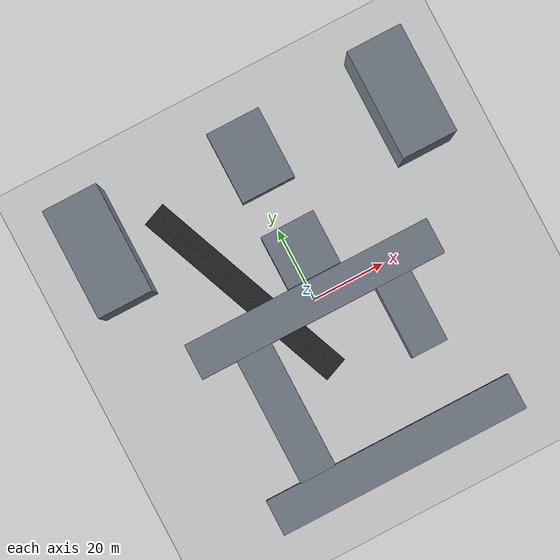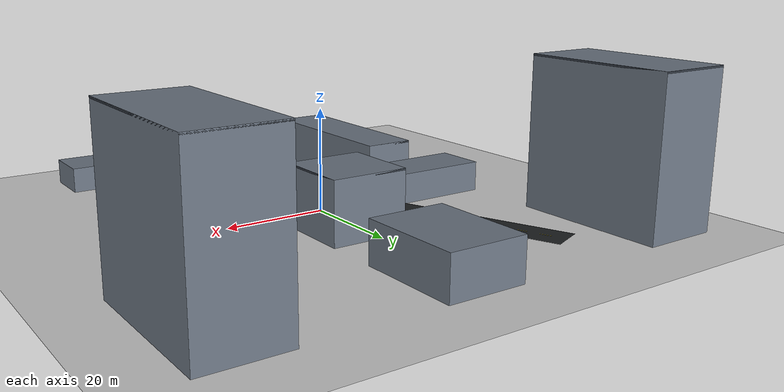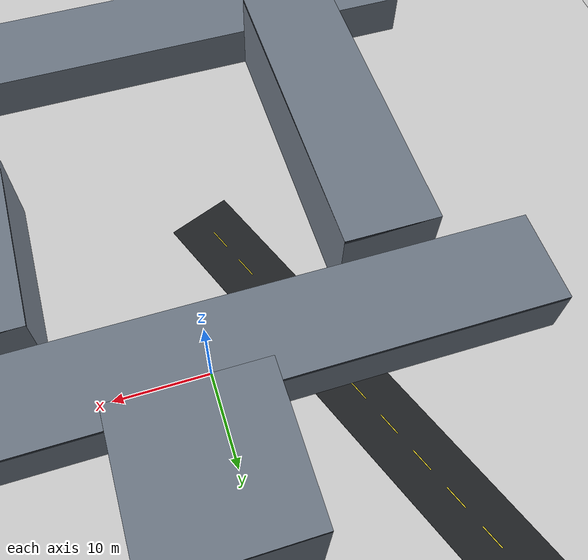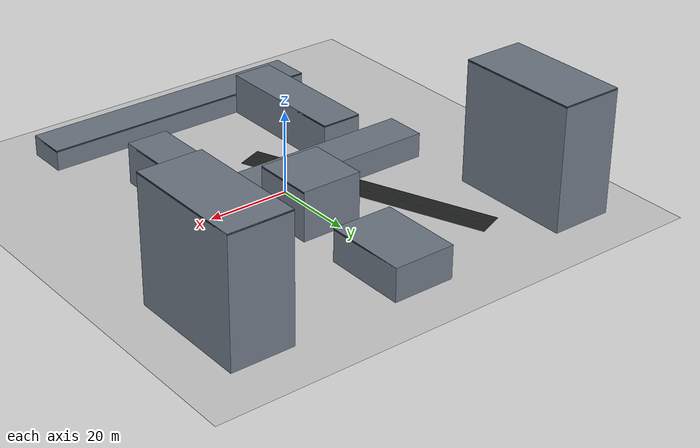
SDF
<?xml version="1.0"?>
<sdf version="1.6"><world name="logistics_2_complex_crossing">
  <physics name="default_physics" type="ode"><max_step_size>0.004</max_step_size><real_time_factor>1</real_time_factor><real_time_update_rate>250</real_time_update_rate><magnetic_field>6.0e-6 2.3e-5 -4.2e-5</magnetic_field></physics>
  <gravity>0 0 -9.8066</gravity>
  <include><uri>model://sun</uri></include>
  <include><uri>model://ground_plane</uri></include>
  <spherical_coordinates><surface_model>EARTH_WGS84</surface_model><latitude_deg>47.397742</latitude_deg><longitude_deg>8.545594</longitude_deg><elevation>488</elevation><heading_deg>0</heading_deg></spherical_coordinates>
<model name="service_road"><static>true</static><pose>-15.000 10.000 0.012 0.000 0.000 -1.190</pose><link name="link"><visual name="visual"><cast_shadows>false</cast_shadows><geometry><box><size>61.852 7.0 0.02</size></box></geometry><material><ambient>0.12 0.13 0.14 1</ambient><diffuse>0.12 0.13 0.14 1</diffuse></material></visual></link></model>
<model name="road_mark_00"><static>true</static><pose>-25.000 35.000 0.026 0.000 0.000 -1.190</pose><link name="link"><visual name="visual"><cast_shadows>false</cast_shadows><geometry><box><size>2.4 0.12 0.012</size></box></geometry><material><ambient>0.92 0.84 0.18 1</ambient><diffuse>0.92 0.84 0.18 1</diffuse></material></visual></link></model>
<model name="road_mark_01"><static>true</static><pose>-23.333 30.833 0.026 0.000 0.000 -1.190</pose><link name="link"><visual name="visual"><cast_shadows>false</cast_shadows><geometry><box><size>2.4 0.12 0.012</size></box></geometry><material><ambient>0.92 0.84 0.18 1</ambient><diffuse>0.92 0.84 0.18 1</diffuse></material></visual></link></model>
<model name="road_mark_02"><static>true</static><pose>-21.667 26.667 0.026 0.000 0.000 -1.190</pose><link name="link"><visual name="visual"><cast_shadows>false</cast_shadows><geometry><box><size>2.4 0.12 0.012</size></box></geometry><material><ambient>0.92 0.84 0.18 1</ambient><diffuse>0.92 0.84 0.18 1</diffuse></material></visual></link></model>
<model name="road_mark_03"><static>true</static><pose>-20.000 22.500 0.026 0.000 0.000 -1.190</pose><link name="link"><visual name="visual"><cast_shadows>false</cast_shadows><geometry><box><size>2.4 0.12 0.012</size></box></geometry><material><ambient>0.92 0.84 0.18 1</ambient><diffuse>0.92 0.84 0.18 1</diffuse></material></visual></link></model>
<model name="road_mark_04"><static>true</static><pose>-18.333 18.333 0.026 0.000 0.000 -1.190</pose><link name="link"><visual name="visual"><cast_shadows>false</cast_shadows><geometry><box><size>2.4 0.12 0.012</size></box></geometry><material><ambient>0.92 0.84 0.18 1</ambient><diffuse>0.92 0.84 0.18 1</diffuse></material></visual></link></model>
<model name="road_mark_05"><static>true</static><pose>-16.667 14.167 0.026 0.000 0.000 -1.190</pose><link name="link"><visual name="visual"><cast_shadows>false</cast_shadows><geometry><box><size>2.4 0.12 0.012</size></box></geometry><material><ambient>0.92 0.84 0.18 1</ambient><diffuse>0.92 0.84 0.18 1</diffuse></material></visual></link></model>
<model name="road_mark_06"><static>true</static><pose>-15.000 10.000 0.026 0.000 0.000 -1.190</pose><link name="link"><visual name="visual"><cast_shadows>false</cast_shadows><geometry><box><size>2.4 0.12 0.012</size></box></geometry><material><ambient>0.92 0.84 0.18 1</ambient><diffuse>0.92 0.84 0.18 1</diffuse></material></visual></link></model>
<model name="road_mark_07"><static>true</static><pose>-13.333 5.833 0.026 0.000 0.000 -1.190</pose><link name="link"><visual name="visual"><cast_shadows>false</cast_shadows><geometry><box><size>2.4 0.12 0.012</size></box></geometry><material><ambient>0.92 0.84 0.18 1</ambient><diffuse>0.92 0.84 0.18 1</diffuse></material></visual></link></model>
<model name="road_mark_08"><static>true</static><pose>-11.667 1.667 0.026 0.000 0.000 -1.190</pose><link name="link"><visual name="visual"><cast_shadows>false</cast_shadows><geometry><box><size>2.4 0.12 0.012</size></box></geometry><material><ambient>0.92 0.84 0.18 1</ambient><diffuse>0.92 0.84 0.18 1</diffuse></material></visual></link></model>
<model name="road_mark_09"><static>true</static><pose>-10.000 -2.500 0.026 0.000 0.000 -1.190</pose><link name="link"><visual name="visual"><cast_shadows>false</cast_shadows><geometry><box><size>2.4 0.12 0.012</size></box></geometry><material><ambient>0.92 0.84 0.18 1</ambient><diffuse>0.92 0.84 0.18 1</diffuse></material></visual></link></model>
<model name="road_mark_10"><static>true</static><pose>-8.333 -6.667 0.026 0.000 0.000 -1.190</pose><link name="link"><visual name="visual"><cast_shadows>false</cast_shadows><geometry><box><size>2.4 0.12 0.012</size></box></geometry><material><ambient>0.92 0.84 0.18 1</ambient><diffuse>0.92 0.84 0.18 1</diffuse></material></visual></link></model>
<model name="road_mark_11"><static>true</static><pose>-6.667 -10.833 0.026 0.000 0.000 -1.190</pose><link name="link"><visual name="visual"><cast_shadows>false</cast_shadows><geometry><box><size>2.4 0.12 0.012</size></box></geometry><material><ambient>0.92 0.84 0.18 1</ambient><diffuse>0.92 0.84 0.18 1</diffuse></material></visual></link></model>
<model name="road_mark_12"><static>true</static><pose>-5.000 -15.000 0.026 0.000 0.000 -1.190</pose><link name="link"><visual name="visual"><cast_shadows>false</cast_shadows><geometry><box><size>2.4 0.12 0.012</size></box></geometry><material><ambient>0.92 0.84 0.18 1</ambient><diffuse>0.92 0.84 0.18 1</diffuse></material></visual></link></model>
<model name="obstacle_00_tower_1"><static>true</static><pose>-42.500 35.000 15.000 0 0 0</pose><link name="link"><collision name="collision"><geometry><box><size>15.000 30.000 30.000</size></box></geometry></collision><visual name="visual"><geometry><box><size>15.000 30.000 30.000</size></box></geometry><material><ambient>0.43 0.47 0.52 1</ambient><diffuse>0.43 0.47 0.52 1</diffuse></material></visual></link></model>
<model name="obstacle_00_tower_1_roof"><static>true</static><pose>-42.500 35.000 29.820 0.000 0.000 0.000</pose><link name="link"><visual name="visual"><cast_shadows>false</cast_shadows><geometry><box><size>15.000 30.000 0.360</size></box></geometry><material><ambient>0.20 0.23 0.27 1</ambient><diffuse>0.20 0.23 0.27 1</diffuse></material></visual></link></model>
<model name="obstacle_01_tower_2"><static>true</static><pose>42.500 35.000 15.000 0 0 0</pose><link name="link"><collision name="collision"><geometry><box><size>15.000 30.000 30.000</size></box></geometry></collision><visual name="visual"><geometry><box><size>15.000 30.000 30.000</size></box></geometry><material><ambient>0.43 0.47 0.52 1</ambient><diffuse>0.43 0.47 0.52 1</diffuse></material></visual></link></model>
<model name="obstacle_01_tower_2_roof"><static>true</static><pose>42.500 35.000 29.820 0.000 0.000 0.000</pose><link name="link"><visual name="visual"><cast_shadows>false</cast_shadows><geometry><box><size>15.000 30.000 0.360</size></box></geometry><material><ambient>0.20 0.23 0.27 1</ambient><diffuse>0.20 0.23 0.27 1</diffuse></material></visual></link></model>
<model name="obstacle_02_platform"><static>true</static><pose>2.500 40.000 4.000 0 0 0</pose><link name="link"><collision name="collision"><geometry><box><size>15.000 20.000 8.000</size></box></geometry></collision><visual name="visual"><geometry><box><size>15.000 20.000 8.000</size></box></geometry><material><ambient>0.43 0.47 0.52 1</ambient><diffuse>0.43 0.47 0.52 1</diffuse></material></visual></link></model>
<model name="obstacle_02_platform_roof"><static>true</static><pose>2.500 40.000 7.820 0.000 0.000 0.000</pose><link name="link"><visual name="visual"><cast_shadows>false</cast_shadows><geometry><box><size>15.000 20.000 0.360</size></box></geometry><material><ambient>0.20 0.23 0.27 1</ambient><diffuse>0.20 0.23 0.27 1</diffuse></material></visual></link></model>
<model name="obstacle_03_plant_room"><static>true</static><pose>2.500 12.500 6.000 0 0 0</pose><link name="link"><collision name="collision"><geometry><box><size>15.000 15.000 12.000</size></box></geometry></collision><visual name="visual"><geometry><box><size>15.000 15.000 12.000</size></box></geometry><material><ambient>0.43 0.47 0.52 1</ambient><diffuse>0.43 0.47 0.52 1</diffuse></material></visual></link></model>
<model name="obstacle_03_plant_room_roof"><static>true</static><pose>2.500 12.500 11.820 0.000 0.000 0.000</pose><link name="link"><visual name="visual"><cast_shadows>false</cast_shadows><geometry><box><size>15.000 15.000 0.360</size></box></geometry><material><ambient>0.20 0.23 0.27 1</ambient><diffuse>0.20 0.23 0.27 1</diffuse></material></visual></link></model>
<model name="obstacle_04_barrier"><static>true</static><pose>0.000 0.000 3.000 0 0 0</pose><link name="link"><collision name="collision"><geometry><box><size>70.000 10.000 6.000</size></box></geometry></collision><visual name="visual"><geometry><box><size>70.000 10.000 6.000</size></box></geometry><material><ambient>0.43 0.47 0.52 1</ambient><diffuse>0.43 0.47 0.52 1</diffuse></material></visual></link></model>
<model name="obstacle_04_barrier_roof"><static>true</static><pose>0.000 0.000 5.820 0.000 0.000 0.000</pose><link name="link"><visual name="visual"><cast_shadows>false</cast_shadows><geometry><box><size>70.000 10.000 0.360</size></box></geometry><material><ambient>0.20 0.23 0.27 1</ambient><diffuse>0.20 0.23 0.27 1</diffuse></material></visual></link></model>
<model name="obstacle_05_wall_a"><static>true</static><pose>-20.000 -22.500 5.000 0 0 0</pose><link name="link"><collision name="collision"><geometry><box><size>10.000 35.000 10.000</size></box></geometry></collision><visual name="visual"><geometry><box><size>10.000 35.000 10.000</size></box></geometry><material><ambient>0.43 0.47 0.52 1</ambient><diffuse>0.43 0.47 0.52 1</diffuse></material></visual></link></model>
<model name="obstacle_05_wall_a_roof"><static>true</static><pose>-20.000 -22.500 9.820 0.000 0.000 0.000</pose><link name="link"><visual name="visual"><cast_shadows>false</cast_shadows><geometry><box><size>10.000 35.000 0.360</size></box></geometry><material><ambient>0.20 0.23 0.27 1</ambient><diffuse>0.20 0.23 0.27 1</diffuse></material></visual></link></model>
<model name="obstacle_06_wall_b"><static>true</static><pose>20.000 -15.000 5.000 0 0 0</pose><link name="link"><collision name="collision"><geometry><box><size>10.000 20.000 10.000</size></box></geometry></collision><visual name="visual"><geometry><box><size>10.000 20.000 10.000</size></box></geometry><material><ambient>0.43 0.47 0.52 1</ambient><diffuse>0.43 0.47 0.52 1</diffuse></material></visual></link></model>
<model name="obstacle_06_wall_b_roof"><static>true</static><pose>20.000 -15.000 9.820 0.000 0.000 0.000</pose><link name="link"><visual name="visual"><cast_shadows>false</cast_shadows><geometry><box><size>10.000 20.000 0.360</size></box></geometry><material><ambient>0.20 0.23 0.27 1</ambient><diffuse>0.20 0.23 0.27 1</diffuse></material></visual></link></model>
<model name="obstacle_07_base"><static>true</static><pose>0.000 -45.000 2.500 0 0 0</pose><link name="link"><collision name="collision"><geometry><box><size>70.000 10.000 5.000</size></box></geometry></collision><visual name="visual"><geometry><box><size>70.000 10.000 5.000</size></box></geometry><material><ambient>0.43 0.47 0.52 1</ambient><diffuse>0.43 0.47 0.52 1</diffuse></material></visual></link></model>
<model name="obstacle_07_base_roof"><static>true</static><pose>0.000 -45.000 4.820 0.000 0.000 0.000</pose><link name="link"><visual name="visual"><cast_shadows>false</cast_shadows><geometry><box><size>70.000 10.000 0.360</size></box></geometry><material><ambient>0.20 0.23 0.27 1</ambient><diffuse>0.20 0.23 0.27 1</diffuse></material></visual></link></model>
<model name="start_zone"><static>true</static><pose>-25.000 35.000 -0.009 0 0 0</pose><link name="link"><visual name="visual"><cast_shadows>false</cast_shadows><geometry><cylinder><radius>1.5</radius><length>0.02</length></cylinder></geometry><material><ambient>0.1 0.8 0.1 1</ambient><diffuse>0.1 0.8 0.1 1</diffuse></material></visual></link></model>
<model name="goal_zone"><static>true</static><pose>-5.000 -15.000 -0.009 0 0 0</pose><link name="link"><visual name="visual"><cast_shadows>false</cast_shadows><geometry><cylinder><radius>1.5</radius><length>0.02</length></cylinder></geometry><material><ambient>0.9 0.15 0.1 1</ambient><diffuse>0.9 0.15 0.1 1</diffuse></material></visual></link></model>
</world></sdf>
